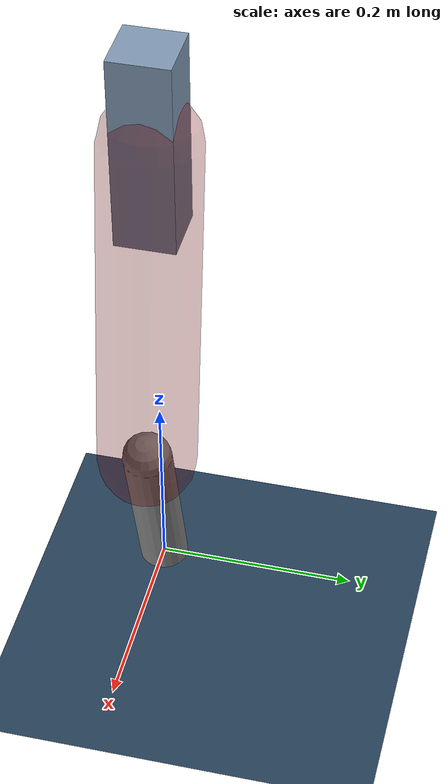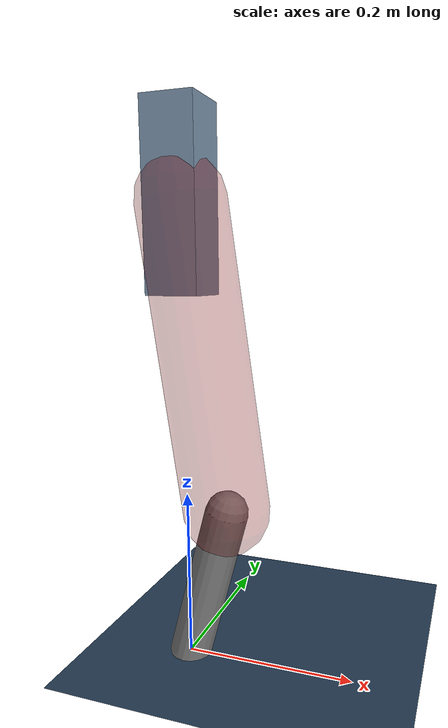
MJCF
<mujoco model="Hopper2D">
	<compiler inertiafromgeom="true" angle="radian" />
	<option timestep="0.001" integrator="implicit" cone="elliptic" solver="Newton" tolerance="1e-10" />

	<default>
		<geom contype="1" conaffinity="1" condim="3" friction="2 0.005 0.0001" solref="0.005 1" />
		<joint limited="true" damping="0.1" />
	</default>

	<asset>
		<texture name="skybox" type="skybox" builtin="gradient" rgb1=".4 .6 .8" rgb2="0 0 0" width="800" height="800" />
		<texture name="grid" type="2d" builtin="checker" rgb1=".1 .2 .3" rgb2=".2 .3 .4" width="300" height="300" mark="edge" markrgb=".2 .3 .4" />
		<material name="ground" texture="grid" texrepeat="1 1" texuniform="true" reflectance="0.1" />
		<material name="leg" rgba="0.5 0.6 0.7 1" />
	</asset>

	<worldbody>

		<geom name="floor" type="plane" size="5 5 0.25" material="ground" />

		<light directional="false" diffuse="0.8 0.8 0.8" specular="0.3 0.3 0.3" pos="0 0 2" dir="0 0 -1" />
		<light mode="targetbodycom" target="base" directional="false" diffuse="0.8 0.8 0.8" specular="0.3 0.3 0.3" pos="0 0 2" dir="0 0 -1" />

		<camera name="fixed" pos="0 -2 1" xyaxes="1 0 0 0 0 1" />
		<camera name="tracking" mode="trackcom" pos="0 -3 1" />

		<body name="root" pos="0 0 0.5292972803249166">
			<joint name="slide_x" type="slide" axis="1 0 0" range="-100 100" />
			<joint name="slide_z" type="slide" axis="0 0 1" range="0 10" />

			<body name="base" pos="0 0 0">
				<geom name="torso" type="box" size="0.03 0.03 0.1" mass="2.715" material="leg" />

				<body name="link1" pos="0 0 0" euler="0 1.4287776956884828 0">
					<joint type="hinge" axis="0 -1 0" pos="0 0 0" name="hinge1" limited="true" range="-3.14 3.14" stiffness="0" damping="0.1" />
					<geom name="thigh" type="capsule" fromto="0 0 0 0.34855757198665155 0 0" size="0.05" rgba="0.5 0 0 0.3" mass="1.1226612015626243" />

					<body name="link2" pos="0.34855757198665155 0 0" euler="0 0.4036463206941375 0">
						<joint type="hinge" axis="0 -1 0" pos="0 0 0" name="hinge2" limited="true" range="-3.14 3.14" stiffness="0" damping="0.1" />
						<geom name="shank" type="capsule" fromto="0 0 0 0.1907397083382651 0 0" size="0.025" mass="0.3930657375044386" />

					</body>
				</body>
			</body>
		</body>
	</worldbody>

	<actuator>
		<motor name="torque1" joint="hinge1" ctrlrange="-83.0540290402183 83.0540290402183" ctrllimited="true" gear="1" />
		<motor name="torque2" joint="hinge2" ctrlrange="-122.10717073783339 122.10717073783339" ctrllimited="true" gear="1" />
	</actuator>
</mujoco>
